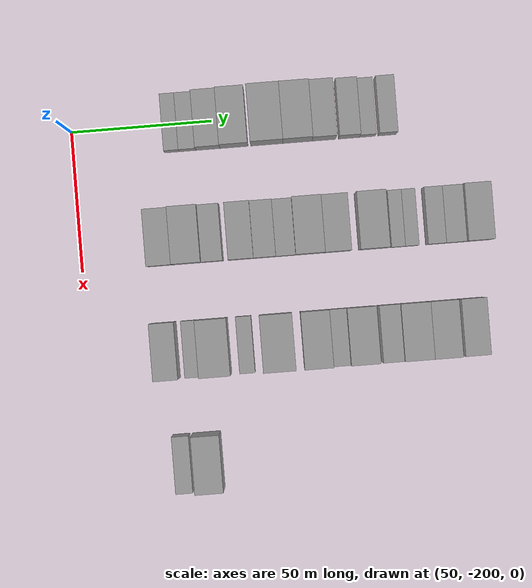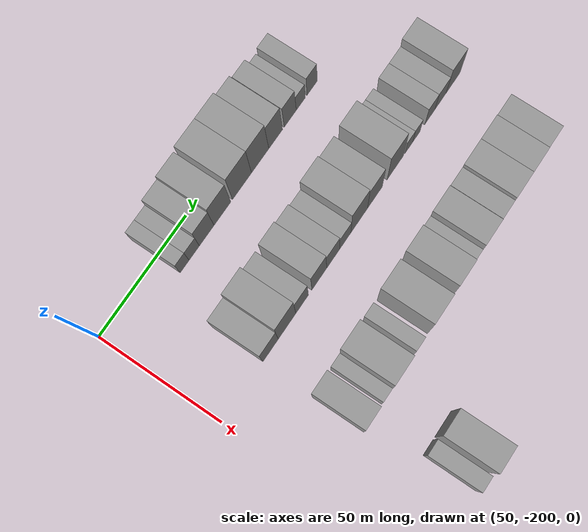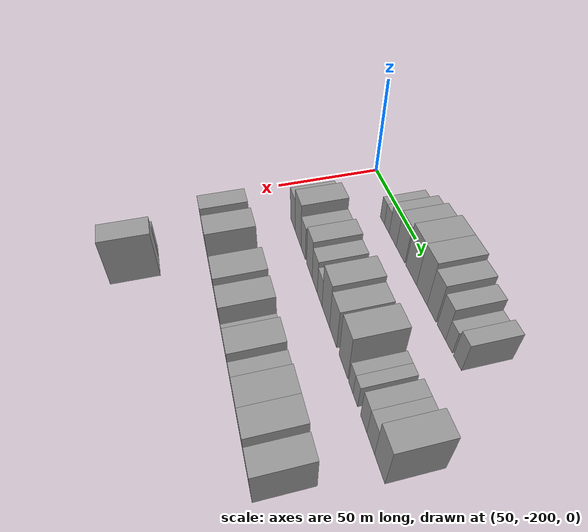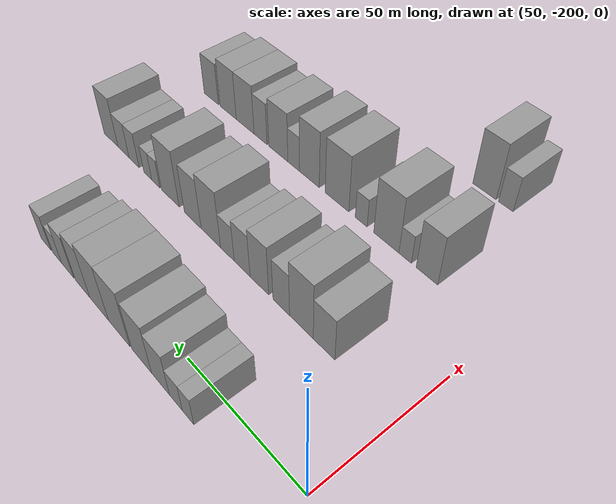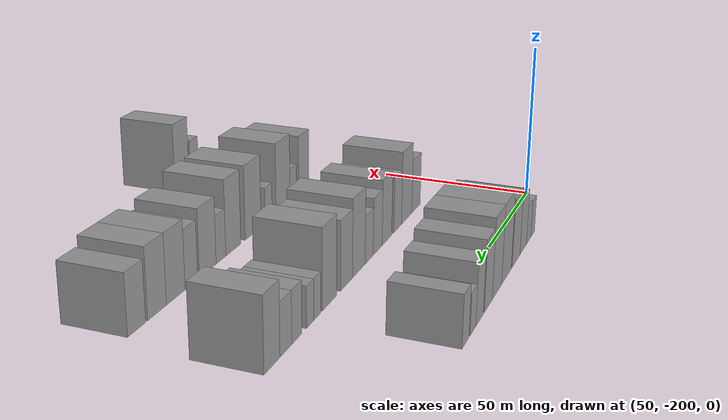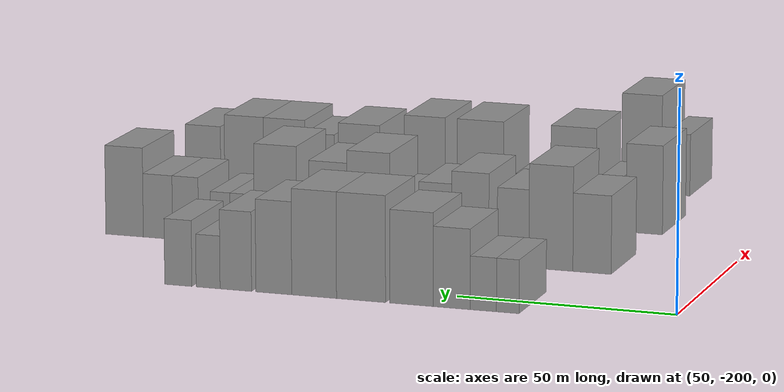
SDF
<sdf version="1.6">
 <world name="default">
  <model name="building_46">
   <static>1</static>
   <pose>50.0000 -164.7321 0 0.000000 0.000000 0.000000</pose>
   <link name="link">
    <pose>0 0 6.00 0 0 0</pose>
    <collision name="collision"><geometry><box><size>20.0000 5.1432 12.0000</size></box></geometry></collision>
    <visual name="visual">
     <cast_shadows>0</cast_shadows>
     <geometry><box><size>20.0000 5.1432 12.0000</size></box></geometry>
     <material>
      <script>
       <uri>model://grey_wall/materials/scripts</uri>
       <uri>model://grey_wall/materials/textures</uri>
       <name>vrc/grey_wall</name>
      </script>
     </material>
    </visual>
   </link>
  </model>
  <model name="building_47">
   <static>1</static>
   <pose>50.0000 -159.1735 0 0.000000 0.000000 0.000000</pose>
   <link name="link">
    <pose>0 0 6.00 0 0 0</pose>
    <collision name="collision"><geometry><box><size>20.0000 5.9740 12.0000</size></box></geometry></collision>
    <visual name="visual">
     <cast_shadows>0</cast_shadows>
     <geometry><box><size>20.0000 5.9740 12.0000</size></box></geometry>
     <material>
      <script>
       <uri>model://grey_wall/materials/scripts</uri>
       <uri>model://grey_wall/materials/textures</uri>
       <name>vrc/grey_wall</name>
      </script>
     </material>
    </visual>
   </link>
  </model>
  <model name="building_48">
   <static>1</static>
   <pose>50.0000 -151.9219 0 0.000000 0.000000 0.000000</pose>
   <link name="link">
    <pose>0 0 9.00 0 0 0</pose>
    <collision name="collision"><geometry><box><size>20.0000 8.5291 18.0000</size></box></geometry></collision>
    <visual name="visual">
     <cast_shadows>0</cast_shadows>
     <geometry><box><size>20.0000 8.5291 18.0000</size></box></geometry>
     <material>
      <script>
       <uri>model://grey_wall/materials/scripts</uri>
       <uri>model://grey_wall/materials/textures</uri>
       <name>vrc/grey_wall</name>
      </script>
     </material>
    </visual>
   </link>
  </model>
  <model name="building_49">
   <static>1</static>
   <pose>50.0000 -142.6936 0 0.000000 0.000000 0.000000</pose>
   <link name="link">
    <pose>0 0 10.50 0 0 0</pose>
    <collision name="collision"><geometry><box><size>20.0000 9.9275 21.0000</size></box></geometry></collision>
    <visual name="visual">
     <cast_shadows>0</cast_shadows>
     <geometry><box><size>20.0000 9.9275 21.0000</size></box></geometry>
     <material>
      <script>
       <uri>model://grey_wall/materials/scripts</uri>
       <uri>model://grey_wall/materials/textures</uri>
       <name>vrc/grey_wall</name>
      </script>
     </material>
    </visual>
   </link>
  </model>
  <model name="building_50">
   <static>1</static>
   <pose>50.0000 -131.0511 0 0.000000 0.000000 0.000000</pose>
   <link name="link">
    <pose>0 0 12.00 0 0 0</pose>
    <collision name="collision"><geometry><box><size>20.0000 11.3575 24.0000</size></box></geometry></collision>
    <visual name="visual">
     <cast_shadows>0</cast_shadows>
     <geometry><box><size>20.0000 11.3575 24.0000</size></box></geometry>
     <material>
      <script>
       <uri>model://grey_wall/materials/scripts</uri>
       <uri>model://grey_wall/materials/textures</uri>
       <name>vrc/grey_wall</name>
      </script>
     </material>
    </visual>
   </link>
  </model>
  <model name="building_51">
   <static>1</static>
   <pose>50.0000 -120.1484 0 0.000000 0.000000 0.000000</pose>
   <link name="link">
    <pose>0 0 12.00 0 0 0</pose>
    <collision name="collision"><geometry><box><size>20.0000 10.4479 24.0000</size></box></geometry></collision>
    <visual name="visual">
     <cast_shadows>0</cast_shadows>
     <geometry><box><size>20.0000 10.4479 24.0000</size></box></geometry>
     <material>
      <script>
       <uri>model://grey_wall/materials/scripts</uri>
       <uri>model://grey_wall/materials/textures</uri>
       <name>vrc/grey_wall</name>
      </script>
     </material>
    </visual>
   </link>
  </model>
  <model name="building_52">
   <static>1</static>
   <pose>50.0000 -110.7239 0 0.000000 0.000000 0.000000</pose>
   <link name="link">
    <pose>0 0 10.50 0 0 0</pose>
    <collision name="collision"><geometry><box><size>20.0000 8.4012 21.0000</size></box></geometry></collision>
    <visual name="visual">
     <cast_shadows>0</cast_shadows>
     <geometry><box><size>20.0000 8.4012 21.0000</size></box></geometry>
     <material>
      <script>
       <uri>model://grey_wall/materials/scripts</uri>
       <uri>model://grey_wall/materials/textures</uri>
       <name>vrc/grey_wall</name>
      </script>
     </material>
    </visual>
   </link>
  </model>
  <model name="building_53">
   <static>1</static>
   <pose>50.0000 -101.8063 0 0.000000 0.000000 0.000000</pose>
   <link name="link">
    <pose>0 0 9.00 0 0 0</pose>
    <collision name="collision"><geometry><box><size>20.0000 7.4339 18.0000</size></box></geometry></collision>
    <visual name="visual">
     <cast_shadows>0</cast_shadows>
     <geometry><box><size>20.0000 7.4339 18.0000</size></box></geometry>
     <material>
      <script>
       <uri>model://grey_wall/materials/scripts</uri>
       <uri>model://grey_wall/materials/textures</uri>
       <name>vrc/grey_wall</name>
      </script>
     </material>
    </visual>
   </link>
  </model>
  <model name="building_54">
   <static>1</static>
   <pose>50.0000 -95.2591 0 0.000000 0.000000 0.000000</pose>
   <link name="link">
    <pose>0 0 6.00 0 0 0</pose>
    <collision name="collision"><geometry><box><size>20.0000 5.6604 12.0000</size></box></geometry></collision>
    <visual name="visual">
     <cast_shadows>0</cast_shadows>
     <geometry><box><size>20.0000 5.6604 12.0000</size></box></geometry>
     <material>
      <script>
       <uri>model://grey_wall/materials/scripts</uri>
       <uri>model://grey_wall/materials/textures</uri>
       <name>vrc/grey_wall</name>
      </script>
     </material>
    </visual>
   </link>
  </model>
  <model name="building_55">
   <static>1</static>
   <pose>50.0000 -88.2091 0 0.000000 0.000000 0.000000</pose>
   <link name="link">
    <pose>0 0 7.50 0 0 0</pose>
    <collision name="collision"><geometry><box><size>20.0000 6.4397 15.0000</size></box></geometry></collision>
    <visual name="visual">
     <cast_shadows>0</cast_shadows>
     <geometry><box><size>20.0000 6.4397 15.0000</size></box></geometry>
     <material>
      <script>
       <uri>model://grey_wall/materials/scripts</uri>
       <uri>model://grey_wall/materials/textures</uri>
       <name>vrc/grey_wall</name>
      </script>
     </material>
    </visual>
   </link>
  </model>
  <model name="building_176">
   <static>1</static>
   <pose>90.0000 -171.8597 0 0.000000 0.000000 0.000000</pose>
   <link name="link">
    <pose>0 0 9.00 0 0 0</pose>
    <collision name="collision"><geometry><box><size>20.0000 8.9312 18.0000</size></box></geometry></collision>
    <visual name="visual">
     <cast_shadows>0</cast_shadows>
     <geometry><box><size>20.0000 8.9312 18.0000</size></box></geometry>
     <material>
      <script>
       <uri>model://grey_wall/materials/scripts</uri>
       <uri>model://grey_wall/materials/textures</uri>
       <name>vrc/grey_wall</name>
      </script>
     </material>
    </visual>
   </link>
  </model>
  <model name="building_177">
   <static>1</static>
   <pose>90.0000 -162.2467 0 0.000000 0.000000 0.000000</pose>
   <link name="link">
    <pose>0 0 12.00 0 0 0</pose>
    <collision name="collision"><geometry><box><size>20.0000 10.2948 24.0000</size></box></geometry></collision>
    <visual name="visual">
     <cast_shadows>0</cast_shadows>
     <geometry><box><size>20.0000 10.2948 24.0000</size></box></geometry>
     <material>
      <script>
       <uri>model://grey_wall/materials/scripts</uri>
       <uri>model://grey_wall/materials/textures</uri>
       <name>vrc/grey_wall</name>
      </script>
     </material>
    </visual>
   </link>
  </model>
  <model name="building_178">
   <static>1</static>
   <pose>90.0000 -153.3565 0 0.000000 0.000000 0.000000</pose>
   <link name="link">
    <pose>0 0 9.00 0 0 0</pose>
    <collision name="collision"><geometry><box><size>20.0000 7.4857 18.0000</size></box></geometry></collision>
    <visual name="visual">
     <cast_shadows>0</cast_shadows>
     <geometry><box><size>20.0000 7.4857 18.0000</size></box></geometry>
     <material>
      <script>
       <uri>model://grey_wall/materials/scripts</uri>
       <uri>model://grey_wall/materials/textures</uri>
       <name>vrc/grey_wall</name>
      </script>
     </material>
    </visual>
   </link>
  </model>
  <model name="building_179">
   <static>1</static>
   <pose>90.0000 -143.2158 0 0.000000 0.000000 0.000000</pose>
   <link name="link">
    <pose>0 0 10.50 0 0 0</pose>
    <collision name="collision"><geometry><box><size>20.0000 8.7957 21.0000</size></box></geometry></collision>
    <visual name="visual">
     <cast_shadows>0</cast_shadows>
     <geometry><box><size>20.0000 8.7957 21.0000</size></box></geometry>
     <material>
      <script>
       <uri>model://grey_wall/materials/scripts</uri>
       <uri>model://grey_wall/materials/textures</uri>
       <name>vrc/grey_wall</name>
      </script>
     </material>
    </visual>
   </link>
  </model>
  <model name="building_180">
   <static>1</static>
   <pose>90.0000 -134.9126 0 0.000000 0.000000 0.000000</pose>
   <link name="link">
    <pose>0 0 9.00 0 0 0</pose>
    <collision name="collision"><geometry><box><size>20.0000 7.8108 18.0000</size></box></geometry></collision>
    <visual name="visual">
     <cast_shadows>0</cast_shadows>
     <geometry><box><size>20.0000 7.8108 18.0000</size></box></geometry>
     <material>
      <script>
       <uri>model://grey_wall/materials/scripts</uri>
       <uri>model://grey_wall/materials/textures</uri>
       <name>vrc/grey_wall</name>
      </script>
     </material>
    </visual>
   </link>
  </model>
  <model name="building_181">
   <static>1</static>
   <pose>90.0000 -127.5355 0 0.000000 0.000000 0.000000</pose>
   <link name="link">
    <pose>0 0 7.50 0 0 0</pose>
    <collision name="collision"><geometry><box><size>20.0000 6.9433 15.0000</size></box></geometry></collision>
    <visual name="visual">
     <cast_shadows>0</cast_shadows>
     <geometry><box><size>20.0000 6.9433 15.0000</size></box></geometry>
     <material>
      <script>
       <uri>model://grey_wall/materials/scripts</uri>
       <uri>model://grey_wall/materials/textures</uri>
       <name>vrc/grey_wall</name>
      </script>
     </material>
    </visual>
   </link>
  </model>
  <model name="building_182">
   <static>1</static>
   <pose>90.0000 -118.9391 0 0.000000 0.000000 0.000000</pose>
   <link name="link">
    <pose>0 0 12.00 0 0 0</pose>
    <collision name="collision"><geometry><box><size>20.0000 10.2496 24.0000</size></box></geometry></collision>
    <visual name="visual">
     <cast_shadows>0</cast_shadows>
     <geometry><box><size>20.0000 10.2496 24.0000</size></box></geometry>
     <material>
      <script>
       <uri>model://grey_wall/materials/scripts</uri>
       <uri>model://grey_wall/materials/textures</uri>
       <name>vrc/grey_wall</name>
      </script>
     </material>
    </visual>
   </link>
  </model>
  <model name="building_183">
   <static>1</static>
   <pose>90.0000 -109.1921 0 0.000000 0.000000 0.000000</pose>
   <link name="link">
    <pose>0 0 10.50 0 0 0</pose>
    <collision name="collision"><geometry><box><size>20.0000 9.2444 21.0000</size></box></geometry></collision>
    <visual name="visual">
     <cast_shadows>0</cast_shadows>
     <geometry><box><size>20.0000 9.2444 21.0000</size></box></geometry>
     <material>
      <script>
       <uri>model://grey_wall/materials/scripts</uri>
       <uri>model://grey_wall/materials/textures</uri>
       <name>vrc/grey_wall</name>
      </script>
     </material>
    </visual>
   </link>
  </model>
  <model name="building_184">
   <static>1</static>
   <pose>90.0000 -96.4363 0 0.000000 0.000000 0.000000</pose>
   <link name="link">
    <pose>0 0 12.00 0 0 0</pose>
    <collision name="collision"><geometry><box><size>20.0000 10.2672 24.0000</size></box></geometry></collision>
    <visual name="visual">
     <cast_shadows>0</cast_shadows>
     <geometry><box><size>20.0000 10.2672 24.0000</size></box></geometry>
     <material>
      <script>
       <uri>model://grey_wall/materials/scripts</uri>
       <uri>model://grey_wall/materials/textures</uri>
       <name>vrc/grey_wall</name>
      </script>
     </material>
    </visual>
   </link>
  </model>
  <model name="building_185">
   <static>1</static>
   <pose>90.0000 -87.8635 0 0.000000 0.000000 0.000000</pose>
   <link name="link">
    <pose>0 0 6.00 0 0 0</pose>
    <collision name="collision"><geometry><box><size>20.0000 4.8784 12.0000</size></box></geometry></collision>
    <visual name="visual">
     <cast_shadows>0</cast_shadows>
     <geometry><box><size>20.0000 4.8784 12.0000</size></box></geometry>
     <material>
      <script>
       <uri>model://grey_wall/materials/scripts</uri>
       <uri>model://grey_wall/materials/textures</uri>
       <name>vrc/grey_wall</name>
      </script>
     </material>
    </visual>
   </link>
  </model>
  <model name="building_186">
   <static>1</static>
   <pose>90.0000 -83.0223 0 0.000000 0.000000 0.000000</pose>
   <link name="link">
    <pose>0 0 6.00 0 0 0</pose>
    <collision name="collision"><geometry><box><size>20.0000 4.8039 12.0000</size></box></geometry></collision>
    <visual name="visual">
     <cast_shadows>0</cast_shadows>
     <geometry><box><size>20.0000 4.8039 12.0000</size></box></geometry>
     <material>
      <script>
       <uri>model://grey_wall/materials/scripts</uri>
       <uri>model://grey_wall/materials/textures</uri>
       <name>vrc/grey_wall</name>
      </script>
     </material>
    </visual>
   </link>
  </model>
  <model name="building_187">
   <static>1</static>
   <pose>90.0000 -74.4276 0 0.000000 0.000000 0.000000</pose>
   <link name="link">
    <pose>0 0 7.50 0 0 0</pose>
    <collision name="collision"><geometry><box><size>20.0000 6.3855 15.0000</size></box></geometry></collision>
    <visual name="visual">
     <cast_shadows>0</cast_shadows>
     <geometry><box><size>20.0000 6.3855 15.0000</size></box></geometry>
     <material>
      <script>
       <uri>model://grey_wall/materials/scripts</uri>
       <uri>model://grey_wall/materials/textures</uri>
       <name>vrc/grey_wall</name>
      </script>
     </material>
    </visual>
   </link>
  </model>
  <model name="building_188">
   <static>1</static>
   <pose>90.0000 -67.6226 0 0.000000 0.000000 0.000000</pose>
   <link name="link">
    <pose>0 0 7.50 0 0 0</pose>
    <collision name="collision"><geometry><box><size>20.0000 7.2245 15.0000</size></box></geometry></collision>
    <visual name="visual">
     <cast_shadows>0</cast_shadows>
     <geometry><box><size>20.0000 7.2245 15.0000</size></box></geometry>
     <material>
      <script>
       <uri>model://grey_wall/materials/scripts</uri>
       <uri>model://grey_wall/materials/textures</uri>
       <name>vrc/grey_wall</name>
      </script>
     </material>
    </visual>
   </link>
  </model>
  <model name="building_189">
   <static>1</static>
   <pose>90.0000 -59.3624 0 0.000000 0.000000 0.000000</pose>
   <link name="link">
    <pose>0 0 10.50 0 0 0</pose>
    <collision name="collision"><geometry><box><size>20.0000 9.2959 21.0000</size></box></geometry></collision>
    <visual name="visual">
     <cast_shadows>0</cast_shadows>
     <geometry><box><size>20.0000 9.2959 21.0000</size></box></geometry>
     <material>
      <script>
       <uri>model://grey_wall/materials/scripts</uri>
       <uri>model://grey_wall/materials/textures</uri>
       <name>vrc/grey_wall</name>
      </script>
     </material>
    </visual>
   </link>
  </model>
  <model name="building_310">
   <static>1</static>
   <pose>130.0000 -172.5428 0 0.000000 0.000000 0.000000</pose>
   <link name="link">
    <pose>0 0 10.50 0 0 0</pose>
    <collision name="collision"><geometry><box><size>20.0000 8.7338 21.0000</size></box></geometry></collision>
    <visual name="visual">
     <cast_shadows>0</cast_shadows>
     <geometry><box><size>20.0000 8.7338 21.0000</size></box></geometry>
     <material>
      <script>
       <uri>model://grey_wall/materials/scripts</uri>
       <uri>model://grey_wall/materials/textures</uri>
       <name>vrc/grey_wall</name>
      </script>
     </material>
    </visual>
   </link>
  </model>
  <model name="building_311">
   <static>1</static>
   <pose>130.0000 -163.5490 0 0.000000 0.000000 0.000000</pose>
   <link name="link">
    <pose>0 0 6.00 0 0 0</pose>
    <collision name="collision"><geometry><box><size>20.0000 5.2538 12.0000</size></box></geometry></collision>
    <visual name="visual">
     <cast_shadows>0</cast_shadows>
     <geometry><box><size>20.0000 5.2538 12.0000</size></box></geometry>
     <material>
      <script>
       <uri>model://grey_wall/materials/scripts</uri>
       <uri>model://grey_wall/materials/textures</uri>
       <name>vrc/grey_wall</name>
      </script>
     </material>
    </visual>
   </link>
  </model>
  <model name="building_312">
   <static>1</static>
   <pose>130.0000 -155.4035 0 0.000000 0.000000 0.000000</pose>
   <link name="link">
    <pose>0 0 12.00 0 0 0</pose>
    <collision name="collision"><geometry><box><size>20.0000 11.0373 24.0000</size></box></geometry></collision>
    <visual name="visual">
     <cast_shadows>0</cast_shadows>
     <geometry><box><size>20.0000 11.0373 24.0000</size></box></geometry>
     <material>
      <script>
       <uri>model://grey_wall/materials/scripts</uri>
       <uri>model://grey_wall/materials/textures</uri>
       <name>vrc/grey_wall</name>
      </script>
     </material>
    </visual>
   </link>
  </model>
  <model name="building_313">
   <static>1</static>
   <pose>130.0000 -144.1601 0 0.000000 0.000000 0.000000</pose>
   <link name="link">
    <pose>0 0 6.00 0 0 0</pose>
    <collision name="collision"><geometry><box><size>20.0000 5.4494 12.0000</size></box></geometry></collision>
    <visual name="visual">
     <cast_shadows>0</cast_shadows>
     <geometry><box><size>20.0000 5.4494 12.0000</size></box></geometry>
     <material>
      <script>
       <uri>model://grey_wall/materials/scripts</uri>
       <uri>model://grey_wall/materials/textures</uri>
       <name>vrc/grey_wall</name>
      </script>
     </material>
    </visual>
   </link>
  </model>
  <model name="building_314">
   <static>1</static>
   <pose>130.0000 -132.7552 0 0.000000 0.000000 0.000000</pose>
   <link name="link">
    <pose>0 0 12.00 0 0 0</pose>
    <collision name="collision"><geometry><box><size>20.0000 11.3603 24.0000</size></box></geometry></collision>
    <visual name="visual">
     <cast_shadows>0</cast_shadows>
     <geometry><box><size>20.0000 11.3603 24.0000</size></box></geometry>
     <material>
      <script>
       <uri>model://grey_wall/materials/scripts</uri>
       <uri>model://grey_wall/materials/textures</uri>
       <name>vrc/grey_wall</name>
      </script>
     </material>
    </visual>
   </link>
  </model>
  <model name="building_315">
   <static>1</static>
   <pose>130.0000 -119.0472 0 0.000000 0.000000 0.000000</pose>
   <link name="link">
    <pose>0 0 12.00 0 0 0</pose>
    <collision name="collision"><geometry><box><size>20.0000 10.0557 24.0000</size></box></geometry></collision>
    <visual name="visual">
     <cast_shadows>0</cast_shadows>
     <geometry><box><size>20.0000 10.0557 24.0000</size></box></geometry>
     <material>
      <script>
       <uri>model://grey_wall/materials/scripts</uri>
       <uri>model://grey_wall/materials/textures</uri>
       <name>vrc/grey_wall</name>
      </script>
     </material>
    </visual>
   </link>
  </model>
  <model name="building_316">
   <static>1</static>
   <pose>130.0000 -110.9442 0 0.000000 0.000000 0.000000</pose>
   <link name="link">
    <pose>0 0 7.50 0 0 0</pose>
    <collision name="collision"><geometry><box><size>20.0000 6.1502 15.0000</size></box></geometry></collision>
    <visual name="visual">
     <cast_shadows>0</cast_shadows>
     <geometry><box><size>20.0000 6.1502 15.0000</size></box></geometry>
     <material>
      <script>
       <uri>model://grey_wall/materials/scripts</uri>
       <uri>model://grey_wall/materials/textures</uri>
       <name>vrc/grey_wall</name>
      </script>
     </material>
    </visual>
   </link>
  </model>
  <model name="building_317">
   <static>1</static>
   <pose>130.0000 -102.7257 0 0.000000 0.000000 0.000000</pose>
   <link name="link">
    <pose>0 0 10.50 0 0 0</pose>
    <collision name="collision"><geometry><box><size>20.0000 10.2869 21.0000</size></box></geometry></collision>
    <visual name="visual">
     <cast_shadows>0</cast_shadows>
     <geometry><box><size>20.0000 10.2869 21.0000</size></box></geometry>
     <material>
      <script>
       <uri>model://grey_wall/materials/scripts</uri>
       <uri>model://grey_wall/materials/textures</uri>
       <name>vrc/grey_wall</name>
      </script>
     </material>
    </visual>
   </link>
  </model>
  <model name="building_318">
   <static>1</static>
   <pose>130.0000 -92.8877 0 0.000000 0.000000 0.000000</pose>
   <link name="link">
    <pose>0 0 9.00 0 0 0</pose>
    <collision name="collision"><geometry><box><size>20.0000 7.3889 18.0000</size></box></geometry></collision>
    <visual name="visual">
     <cast_shadows>0</cast_shadows>
     <geometry><box><size>20.0000 7.3889 18.0000</size></box></geometry>
     <material>
      <script>
       <uri>model://grey_wall/materials/scripts</uri>
       <uri>model://grey_wall/materials/textures</uri>
       <name>vrc/grey_wall</name>
      </script>
     </material>
    </visual>
   </link>
  </model>
  <model name="building_319">
   <static>1</static>
   <pose>130.0000 -83.9954 0 0.000000 0.000000 0.000000</pose>
   <link name="link">
    <pose>0 0 10.50 0 0 0</pose>
    <collision name="collision"><geometry><box><size>20.0000 10.3957 21.0000</size></box></geometry></collision>
    <visual name="visual">
     <cast_shadows>0</cast_shadows>
     <geometry><box><size>20.0000 10.3957 21.0000</size></box></geometry>
     <material>
      <script>
       <uri>model://grey_wall/materials/scripts</uri>
       <uri>model://grey_wall/materials/textures</uri>
       <name>vrc/grey_wall</name>
      </script>
     </material>
    </visual>
   </link>
  </model>
  <model name="building_320">
   <static>1</static>
   <pose>130.0000 -73.8704 0 0.000000 0.000000 0.000000</pose>
   <link name="link">
    <pose>0 0 10.50 0 0 0</pose>
    <collision name="collision"><geometry><box><size>20.0000 9.8544 21.0000</size></box></geometry></collision>
    <visual name="visual">
     <cast_shadows>0</cast_shadows>
     <geometry><box><size>20.0000 9.8544 21.0000</size></box></geometry>
     <material>
      <script>
       <uri>model://grey_wall/materials/scripts</uri>
       <uri>model://grey_wall/materials/textures</uri>
       <name>vrc/grey_wall</name>
      </script>
     </material>
    </visual>
   </link>
  </model>
  <model name="building_321">
   <static>1</static>
   <pose>130.0000 -63.4724 0 0.000000 0.000000 0.000000</pose>
   <link name="link">
    <pose>0 0 9.00 0 0 0</pose>
    <collision name="collision"><geometry><box><size>20.0000 8.9416 18.0000</size></box></geometry></collision>
    <visual name="visual">
     <cast_shadows>0</cast_shadows>
     <geometry><box><size>20.0000 8.9416 18.0000</size></box></geometry>
     <material>
      <script>
       <uri>model://grey_wall/materials/scripts</uri>
       <uri>model://grey_wall/materials/textures</uri>
       <name>vrc/grey_wall</name>
      </script>
     </material>
    </visual>
   </link>
  </model>
  <model name="building_450">
   <static>1</static>
   <pose>170.0000 -169.3947 0 0.000000 0.000000 0.000000</pose>
   <link name="link">
    <pose>0 0 7.50 0 0 0</pose>
    <collision name="collision"><geometry><box><size>20.0000 6.0124 15.0000</size></box></geometry></collision>
    <visual name="visual">
     <cast_shadows>0</cast_shadows>
     <geometry><box><size>20.0000 6.0124 15.0000</size></box></geometry>
     <material>
      <script>
       <uri>model://grey_wall/materials/scripts</uri>
       <uri>model://grey_wall/materials/textures</uri>
       <name>vrc/grey_wall</name>
      </script>
     </material>
    </visual>
   </link>
  </model>
  <model name="building_451">
   <static>1</static>
   <pose>170.0000 -160.4196 0 0.000000 0.000000 0.000000</pose>
   <link name="link">
    <pose>0 0 12.00 0 0 0</pose>
    <collision name="collision"><geometry><box><size>20.0000 9.9378 24.0000</size></box></geometry></collision>
    <visual name="visual">
     <cast_shadows>0</cast_shadows>
     <geometry><box><size>20.0000 9.9378 24.0000</size></box></geometry>
     <material>
      <script>
       <uri>model://grey_wall/materials/scripts</uri>
       <uri>model://grey_wall/materials/textures</uri>
       <name>vrc/grey_wall</name>
      </script>
     </material>
    </visual>
   </link>
  </model>
 </world>
</sdf>
